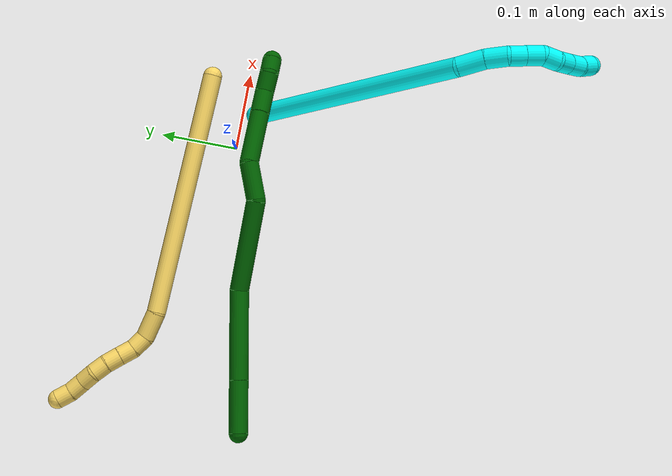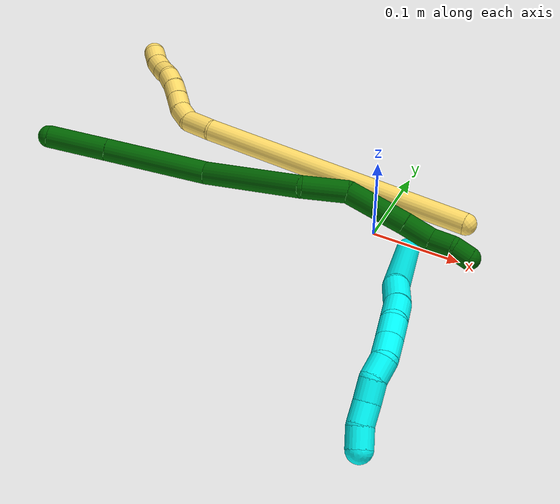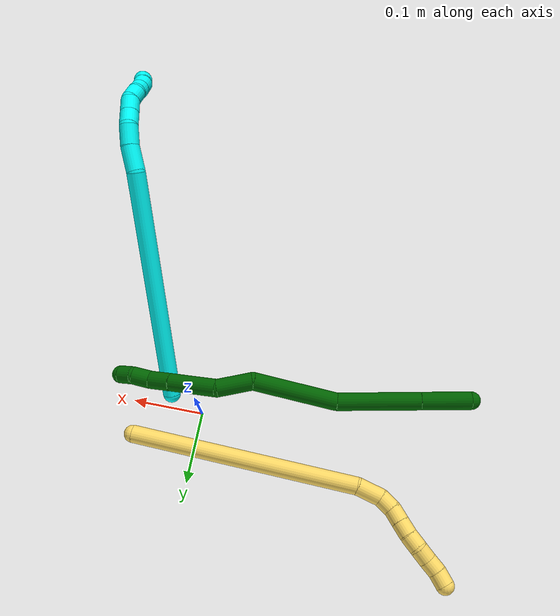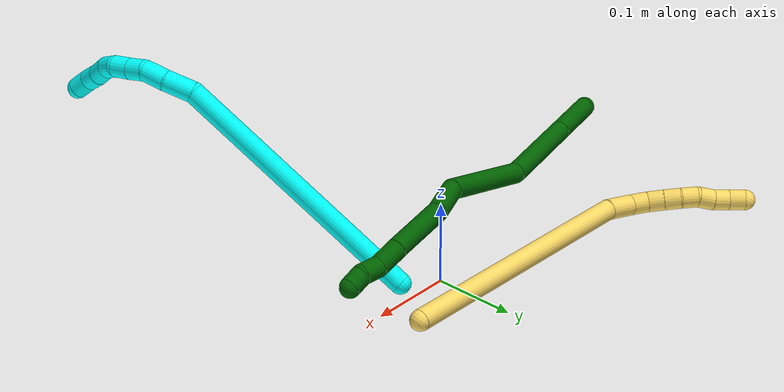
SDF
<sdf version="1.7">
 <world name="default">
  <model name="photoneo_s_sensor">
   <static>1</static>
   <pose>0 0 2 1.57079 1.57079 3.14159</pose>
   <link name="link">
    <inertial><mass>0.1</mass></inertial>
    <sensor name="sensor" type="depth">
     <update_rate>30</update_rate>
     <camera>
      <horizontal_fov>1.22</horizontal_fov>
      <image><width>1920</width><height>1200</height><format>B8G8R8</format></image>
      <clip><near>0.1</near><far>4</far></clip>
      <depth_camera><output>points</output></depth_camera>
     </camera>
     <plugin name="camera_plugin" filename="libgazebo_ros_depth_camera.so">
      <baseline>0.2</baseline>
      <alwaysOn>1</alwaysOn>
      <updateRate>0.0</updateRate>
      <cameraName>camera_ir</cameraName>
      <imageTopicName>/camera/color/image_raw</imageTopicName>
      <cameraInfoTopicName>/camera/color/camera_info</cameraInfoTopicName>
      <depthImageTopicName>/camera/depth/image_raw</depthImageTopicName>
      <depthImageCameraInfoTopicName>/camera/depth/camera_info</depthImageCameraInfoTopicName>
      <pointCloudTopicName>/camera/depth/points</pointCloudTopicName>
      <frameName>fr_optical</frameName>
      <pointCloudCutoff>0.1</pointCloudCutoff>
      <pointCloudCutoffMax>2.0</pointCloudCutoffMax>
      <distortionK1>0</distortionK1>
      <distortionK2>0</distortionK2>
      <distortionK3>0</distortionK3>
      <distortionT1>0</distortionT1>
      <distortionT2>0</distortionT2>
      <CxPrime>0</CxPrime>
      <Cx>0</Cx>
      <Cy>0</Cy>
      <focalLength>0</focalLength>
      <hackBaseline>0</hackBaseline>
     </plugin>
    </sensor>
   </link>
  </model>
  <model name="bin">
   <static>1</static>
   <link name="bottom">
    <collision name="collision-bottom">
     <pose>0 0 -0.01 0 -0 0</pose>
     <geometry><box><size>0.8 0.6 0.02</size></box></geometry>
     <surface>
      <friction><ode><mu>100</mu><mu2>100</mu2></ode></friction>
      <contact><collide_bitmask>65535</collide_bitmask></contact>
     </surface>
    </collision>
   </link>
   <link name="west_wall">
    <collision name="collision-west_wall">
     <pose>-0.41 0 0.1 0 -0 0</pose>
     <geometry><box><size>0.02 0.6 0.2</size></box></geometry>
     <surface>
      <friction><ode><mu>100</mu><mu2>100</mu2></ode></friction>
      <contact><collide_bitmask>65535</collide_bitmask></contact>
     </surface>
    </collision>
   </link>
   <link name="east_wall">
    <collision name="collision-east_wall">
     <pose>0.41 0 0.1 0 -0 0</pose>
     <geometry><box><size>0.02 0.6 0.2</size></box></geometry>
     <surface>
      <friction><ode><mu>100</mu><mu2>100</mu2></ode></friction>
      <contact><collide_bitmask>65535</collide_bitmask></contact>
     </surface>
    </collision>
   </link>
   <link name="south_wall">
    <collision name="collision-south_wall">
     <pose>0 -0.31 0.1 0 -0 0</pose>
     <geometry><box><size>0.8 0.02 0.2</size></box></geometry>
     <surface>
      <friction><ode><mu>100</mu><mu2>100</mu2></ode></friction>
      <contact><collide_bitmask>65535</collide_bitmask></contact>
     </surface>
    </collision>
   </link>
   <link name="north_wall">
    <collision name="collision-north_wall">
     <pose>0 0.31 0.1 0 -0 0</pose>
     <geometry><box><size>0.8 0.02 0.2</size></box></geometry>
     <surface>
      <friction><ode><mu>100</mu><mu2>100</mu2></ode></friction>
      <contact><collide_bitmask>65535</collide_bitmask></contact>
     </surface>
    </collision>
   </link>
  </model>
  <model name="3">
   <static>0</static>
   <link name="3">
    <collision name="collision-cylinder-e_1_1_4">
     <pose>-0.009658 -0.007626 0.15699 0.048537 -0.061371 -0.00149</pose>
     <geometry><cylinder><radius>0.0125</radius><length>0.314942</length></cylinder></geometry>
     <surface>
      <friction><ode><mu>1.16</mu><mu2>1.16</mu2><slip1>0</slip1><slip2>0</slip2></ode></friction>
      <contact><ode><kp>1e+06</kp><kd>1</kd><max_vel>0</max_vel><min_depth>0.001</min_depth></ode></contact>
     </surface>
    </collision>
    <visual name="visual-cylinder-e_1_1_4">
     <pose>-0.009658 -0.007626 0.15699 0.048537 -0.061371 -0.00149</pose>
     <geometry><cylinder><radius>0.0125</radius><length>0.314942</length></cylinder></geometry>
     <material><ambient>0.003922 1 0.996078 1</ambient></material>
    </visual>
    <collision name="collision-cylinder-e_2_4_5">
     <pose>-0.015285 -0.012621 0.330476 -0.158149 0.236777 -0.01885</pose>
     <geometry><cylinder><radius>0.0125</radius><length>0.03437</length></cylinder></geometry>
     <surface>
      <friction><ode><mu>1.16</mu><mu2>1.16</mu2><slip1>0</slip1><slip2>0</slip2></ode></friction>
      <contact><ode><kp>1e+06</kp><kd>1</kd><max_vel>0</max_vel><min_depth>0.001</min_depth></ode></contact>
     </surface>
    </collision>
    <visual name="visual-cylinder-e_2_4_5">
     <pose>-0.015285 -0.012621 0.330476 -0.158149 0.236777 -0.01885</pose>
     <geometry><cylinder><radius>0.0125</radius><length>0.03437</length></cylinder></geometry>
     <material><ambient>0.003922 1 0.996078 1</ambient></material>
    </visual>
    <collision name="collision-cylinder-e_3_5_6">
     <pose>-0.006812 -0.009717 0.360269 -0.020497 0.322386 -0.003333</pose>
     <geometry><cylinder><radius>0.0125</radius><length>0.028042</length></cylinder></geometry>
     <surface>
      <friction><ode><mu>1.16</mu><mu2>1.16</mu2><slip1>0</slip1><slip2>0</slip2></ode></friction>
      <contact><ode><kp>1e+06</kp><kd>1</kd><max_vel>0</max_vel><min_depth>0.001</min_depth></ode></contact>
     </surface>
    </collision>
    <visual name="visual-cylinder-e_3_5_6">
     <pose>-0.006812 -0.009717 0.360269 -0.020497 0.322386 -0.003333</pose>
     <geometry><cylinder><radius>0.0125</radius><length>0.028042</length></cylinder></geometry>
     <material><ambient>0.003922 1 0.996078 1</ambient></material>
    </visual>
    <collision name="collision-cylinder-e_4_6_7">
     <pose>0.004327 -0.008712 0.381431 -0.092811 0.703101 -0.034063</pose>
     <geometry><cylinder><radius>0.0125</radius><length>0.020712</length></cylinder></geometry>
     <surface>
      <friction><ode><mu>1.16</mu><mu2>1.16</mu2><slip1>0</slip1><slip2>0</slip2></ode></friction>
      <contact><ode><kp>1e+06</kp><kd>1</kd><max_vel>0</max_vel><min_depth>0.001</min_depth></ode></contact>
     </surface>
    </collision>
    <visual name="visual-cylinder-e_4_6_7">
     <pose>0.004327 -0.008712 0.381431 -0.092811 0.703101 -0.034063</pose>
     <geometry><cylinder><radius>0.0125</radius><length>0.020712</length></cylinder></geometry>
     <material><ambient>0.003922 1 0.996078 1</ambient></material>
    </visual>
    <collision name="collision-cylinder-e_5_7_8">
     <pose>0.017532 -0.007441 0.397811 -0.06326 0.651766 -0.021384</pose>
     <geometry><cylinder><radius>0.0125</radius><length>0.021461</length></cylinder></geometry>
     <surface>
      <friction><ode><mu>1.16</mu><mu2>1.16</mu2><slip1>0</slip1><slip2>0</slip2></ode></friction>
      <contact><ode><kp>1e+06</kp><kd>1</kd><max_vel>0</max_vel><min_depth>0.001</min_depth></ode></contact>
     </surface>
    </collision>
    <visual name="visual-cylinder-e_5_7_8">
     <pose>0.017532 -0.007441 0.397811 -0.06326 0.651766 -0.021384</pose>
     <geometry><cylinder><radius>0.0125</radius><length>0.021461</length></cylinder></geometry>
     <material><ambient>0.003922 1 0.996078 1</ambient></material>
    </visual>
    <collision name="collision-cylinder-e_6_8_9">
     <pose>0.03263 -0.008423 0.411302 0.296578 1.02609 0.167922</pose>
     <geometry><cylinder><radius>0.0125</radius><length>0.020085</length></cylinder></geometry>
     <surface>
      <friction><ode><mu>1.16</mu><mu2>1.16</mu2><slip1>0</slip1><slip2>0</slip2></ode></friction>
      <contact><ode><kp>1e+06</kp><kd>1</kd><max_vel>0</max_vel><min_depth>0.001</min_depth></ode></contact>
     </surface>
    </collision>
    <visual name="visual-cylinder-e_6_8_9">
     <pose>0.03263 -0.008423 0.411302 0.296578 1.02609 0.167922</pose>
     <geometry><cylinder><radius>0.0125</radius><length>0.020085</length></cylinder></geometry>
     <material><ambient>0.003922 1 0.996078 1</ambient></material>
    </visual>
    <collision name="collision-cylinder-e_7_9_10">
     <pose>0.050923 -0.008819 0.418895 -0.405757 1.28534 -0.305626</pose>
     <geometry><cylinder><radius>0.0125</radius><length>0.020226</length></cylinder></geometry>
     <surface>
      <friction><ode><mu>1.16</mu><mu2>1.16</mu2><slip1>0</slip1><slip2>0</slip2></ode></friction>
      <contact><ode><kp>1e+06</kp><kd>1</kd><max_vel>0</max_vel><min_depth>0.001</min_depth></ode></contact>
     </surface>
    </collision>
    <visual name="visual-cylinder-e_7_9_10">
     <pose>0.050923 -0.008819 0.418895 -0.405757 1.28534 -0.305626</pose>
     <geometry><cylinder><radius>0.0125</radius><length>0.020226</length></cylinder></geometry>
     <material><ambient>0.003922 1 0.996078 1</ambient></material>
    </visual>
    <collision name="collision-cylinder-e_8_10_11">
     <pose>0.069905 -0.006944 0.425167 -0.202697 1.18834 -0.1372</pose>
     <geometry><cylinder><radius>0.0125</radius><length>0.020001</length></cylinder></geometry>
     <surface>
      <friction><ode><mu>1.16</mu><mu2>1.16</mu2><slip1>0</slip1><slip2>0</slip2></ode></friction>
      <contact><ode><kp>1e+06</kp><kd>1</kd><max_vel>0</max_vel><min_depth>0.001</min_depth></ode></contact>
     </surface>
    </collision>
    <visual name="visual-cylinder-e_8_10_11">
     <pose>0.069905 -0.006944 0.425167 -0.202697 1.18834 -0.1372</pose>
     <geometry><cylinder><radius>0.0125</radius><length>0.020001</length></cylinder></geometry>
     <material><ambient>0.003922 1 0.996078 1</ambient></material>
    </visual>
    <collision name="collision-cylinder-e_9_11_2">
     <pose>0.088215 -0.002954 0.431912 -0.808988 1.11076 -0.519306</pose>
     <geometry><cylinder><radius>0.0125</radius><length>0.02016</length></cylinder></geometry>
     <surface>
      <friction><ode><mu>1.16</mu><mu2>1.16</mu2><slip1>0</slip1><slip2>0</slip2></ode></friction>
      <contact><ode><kp>1e+06</kp><kd>1</kd><max_vel>0</max_vel><min_depth>0.001</min_depth></ode></contact>
     </surface>
    </collision>
    <visual name="visual-cylinder-e_9_11_2">
     <pose>0.088215 -0.002954 0.431912 -0.808988 1.11076 -0.519306</pose>
     <geometry><cylinder><radius>0.0125</radius><length>0.02016</length></cylinder></geometry>
     <material><ambient>0.003922 1 0.996078 1</ambient></material>
    </visual>
    <collision name="collision-sphere-2">
     <pose>0.097247 0.000284 0.435001 0 -0 0</pose>
     <geometry><sphere><radius>0.0125</radius></sphere></geometry>
     <surface>
      <friction><ode><mu>1.16</mu><mu2>1.16</mu2><slip1>0</slip1><slip2>0</slip2></ode></friction>
      <contact><ode><kp>1e+06</kp><kd>1</kd><max_vel>0</max_vel><min_depth>0.001</min_depth></ode></contact>
     </surface>
    </collision>
    <visual name="visual-sphere-2">
     <pose>0.097247 0.000284 0.435001 0 -0 0</pose>
     <geometry><sphere><radius>0.0125</radius></sphere></geometry>
     <material><ambient>0.003922 1 0.996078 1</ambient></material>
    </visual>
    <collision name="collision-sphere-11">
     <pose>0.079183 -0.006192 0.428823 0 -0 0</pose>
     <geometry><sphere><radius>0.0125</radius></sphere></geometry>
     <surface>
      <friction><ode><mu>1.16</mu><mu2>1.16</mu2><slip1>0</slip1><slip2>0</slip2></ode></friction>
      <contact><ode><kp>1e+06</kp><kd>1</kd><max_vel>0</max_vel><min_depth>0.001</min_depth></ode></contact>
     </surface>
    </collision>
    <visual name="visual-sphere-11">
     <pose>0.079183 -0.006192 0.428823 0 -0 0</pose>
     <geometry><sphere><radius>0.0125</radius></sphere></geometry>
     <material><ambient>0.003922 1 0.996078 1</ambient></material>
    </visual>
    <collision name="collision-sphere-10">
     <pose>0.060627 -0.007695 0.421511 0 -0 0</pose>
     <geometry><sphere><radius>0.0125</radius></sphere></geometry>
     <surface>
      <friction><ode><mu>1.16</mu><mu2>1.16</mu2><slip1>0</slip1><slip2>0</slip2></ode></friction>
      <contact><ode><kp>1e+06</kp><kd>1</kd><max_vel>0</max_vel><min_depth>0.001</min_depth></ode></contact>
     </surface>
    </collision>
    <visual name="visual-sphere-10">
     <pose>0.060627 -0.007695 0.421511 0 -0 0</pose>
     <geometry><sphere><radius>0.0125</radius></sphere></geometry>
     <material><ambient>0.003922 1 0.996078 1</ambient></material>
    </visual>
    <collision name="collision-sphere-9">
     <pose>0.041219 -0.009943 0.416278 0 -0 0</pose>
     <geometry><sphere><radius>0.0125</radius></sphere></geometry>
     <surface>
      <friction><ode><mu>1.16</mu><mu2>1.16</mu2><slip1>0</slip1><slip2>0</slip2></ode></friction>
      <contact><ode><kp>1e+06</kp><kd>1</kd><max_vel>0</max_vel><min_depth>0.001</min_depth></ode></contact>
     </surface>
    </collision>
    <visual name="visual-sphere-9">
     <pose>0.041219 -0.009943 0.416278 0 -0 0</pose>
     <geometry><sphere><radius>0.0125</radius></sphere></geometry>
     <material><ambient>0.003922 1 0.996078 1</ambient></material>
    </visual>
    <collision name="collision-sphere-4">
     <pose>-0.019316 -0.015252 0.313979 0 -0 0</pose>
     <geometry><sphere><radius>0.0125</radius></sphere></geometry>
     <surface>
      <friction><ode><mu>1.16</mu><mu2>1.16</mu2><slip1>0</slip1><slip2>0</slip2></ode></friction>
      <contact><ode><kp>1e+06</kp><kd>1</kd><max_vel>0</max_vel><min_depth>0.001</min_depth></ode></contact>
     </surface>
    </collision>
    <visual name="visual-sphere-4">
     <pose>-0.019316 -0.015252 0.313979 0 -0 0</pose>
     <geometry><sphere><radius>0.0125</radius></sphere></geometry>
     <material><ambient>0.003922 1 0.996078 1</ambient></material>
    </visual>
    <collision name="collision-sphere-1">
     <geometry><sphere><radius>0.0125</radius></sphere></geometry>
     <surface>
      <friction><ode><mu>1.16</mu><mu2>1.16</mu2><slip1>0</slip1><slip2>0</slip2></ode></friction>
      <contact><ode><kp>1e+06</kp><kd>1</kd><max_vel>0</max_vel><min_depth>0.001</min_depth></ode></contact>
     </surface>
    </collision>
    <visual name="visual-sphere-1">
     <geometry><sphere><radius>0.0125</radius></sphere></geometry>
     <material><ambient>0.003922 1 0.996078 1</ambient></material>
    </visual>
    <collision name="collision-sphere-8">
     <pose>0.024041 -0.006902 0.406325 0 -0 0</pose>
     <geometry><sphere><radius>0.0125</radius></sphere></geometry>
     <surface>
      <friction><ode><mu>1.16</mu><mu2>1.16</mu2><slip1>0</slip1><slip2>0</slip2></ode></friction>
      <contact><ode><kp>1e+06</kp><kd>1</kd><max_vel>0</max_vel><min_depth>0.001</min_depth></ode></contact>
     </surface>
    </collision>
    <visual name="visual-sphere-8">
     <pose>0.024041 -0.006902 0.406325 0 -0 0</pose>
     <geometry><sphere><radius>0.0125</radius></sphere></geometry>
     <material><ambient>0.003922 1 0.996078 1</ambient></material>
    </visual>
    <collision name="collision-sphere-5">
     <pose>-0.011254 -0.00999 0.346973 0 -0 0</pose>
     <geometry><sphere><radius>0.0125</radius></sphere></geometry>
     <surface>
      <friction><ode><mu>1.16</mu><mu2>1.16</mu2><slip1>0</slip1><slip2>0</slip2></ode></friction>
      <contact><ode><kp>1e+06</kp><kd>1</kd><max_vel>0</max_vel><min_depth>0.001</min_depth></ode></contact>
     </surface>
    </collision>
    <visual name="visual-sphere-5">
     <pose>-0.011254 -0.00999 0.346973 0 -0 0</pose>
     <geometry><sphere><radius>0.0125</radius></sphere></geometry>
     <material><ambient>0.003922 1 0.996078 1</ambient></material>
    </visual>
    <collision name="collision-sphere-6">
     <pose>-0.002369 -0.009445 0.373565 0 -0 0</pose>
     <geometry><sphere><radius>0.0125</radius></sphere></geometry>
     <surface>
      <friction><ode><mu>1.16</mu><mu2>1.16</mu2><slip1>0</slip1><slip2>0</slip2></ode></friction>
      <contact><ode><kp>1e+06</kp><kd>1</kd><max_vel>0</max_vel><min_depth>0.001</min_depth></ode></contact>
     </surface>
    </collision>
    <visual name="visual-sphere-6">
     <pose>-0.002369 -0.009445 0.373565 0 -0 0</pose>
     <geometry><sphere><radius>0.0125</radius></sphere></geometry>
     <material><ambient>0.003922 1 0.996078 1</ambient></material>
    </visual>
    <collision name="collision-sphere-7">
     <pose>0.011023 -0.00798 0.389297 0 -0 0</pose>
     <geometry><sphere><radius>0.0125</radius></sphere></geometry>
     <surface>
      <friction><ode><mu>1.16</mu><mu2>1.16</mu2><slip1>0</slip1><slip2>0</slip2></ode></friction>
      <contact><ode><kp>1e+06</kp><kd>1</kd><max_vel>0</max_vel><min_depth>0.001</min_depth></ode></contact>
     </surface>
    </collision>
    <visual name="visual-sphere-7">
     <pose>0.011023 -0.00798 0.389297 0 -0 0</pose>
     <geometry><sphere><radius>0.0125</radius></sphere></geometry>
     <material><ambient>0.003922 1 0.996078 1</ambient></material>
    </visual>
    <inertial>
     <pose>0.003139 -0.007988 0.242573 0 -0 0</pose>
     <mass>0.5</mass>
     <inertia>
      <ixx>0.002626</ixx>
      <ixy>0</ixy>
      <ixz>0</ixz>
      <iyy>0.002625</iyy>
      <iyz>0</iyz>
      <izz>0.00031</izz>
     </inertia>
    </inertial>
   </link>
   <pose>0.047644 -0.017849 0.011495 -0.433916 0.937247 -1.74067</pose>
  </model>
  <model name="5">
   <static>0</static>
   <link name="5">
    <collision name="collision-cylinder-e_1_1_4">
     <pose>-0.109107 -0.004728 0.118324 0.039933 -0.744495 -0.015594</pose>
     <geometry><cylinder><radius>0.0125</radius><length>0.322039</length></cylinder></geometry>
     <surface>
      <friction><ode><mu>1.16</mu><mu2>1.16</mu2><slip1>0</slip1><slip2>0</slip2></ode></friction>
      <contact><ode><kp>1e+06</kp><kd>1</kd><max_vel>0</max_vel><min_depth>0.001</min_depth></ode></contact>
     </surface>
    </collision>
    <visual name="visual-cylinder-e_1_1_4">
     <pose>-0.109107 -0.004728 0.118324 0.039933 -0.744495 -0.015594</pose>
     <geometry><cylinder><radius>0.0125</radius><length>0.322039</length></cylinder></geometry>
     <material><ambient>1 0.858824 0.4 1</ambient></material>
    </visual>
    <collision name="collision-cylinder-e_2_4_5">
     <pose>-0.231661 -0.006028 0.248008 -0.292996 -0.847817 0.132978</pose>
     <geometry><cylinder><radius>0.0125</radius><length>0.035867</length></cylinder></geometry>
     <surface>
      <friction><ode><mu>1.16</mu><mu2>1.16</mu2><slip1>0</slip1><slip2>0</slip2></ode></friction>
      <contact><ode><kp>1e+06</kp><kd>1</kd><max_vel>0</max_vel><min_depth>0.001</min_depth></ode></contact>
     </surface>
    </collision>
    <visual name="visual-cylinder-e_2_4_5">
     <pose>-0.231661 -0.006028 0.248008 -0.292996 -0.847817 0.132978</pose>
     <geometry><cylinder><radius>0.0125</radius><length>0.035867</length></cylinder></geometry>
     <material><ambient>1 0.858824 0.4 1</ambient></material>
    </visual>
    <collision name="collision-cylinder-e_3_5_6">
     <pose>-0.250335 0.002814 0.26714 -0.608544 -0.504203 0.161422</pose>
     <geometry><cylinder><radius>0.0125</radius><length>0.02164</length></cylinder></geometry>
     <surface>
      <friction><ode><mu>1.16</mu><mu2>1.16</mu2><slip1>0</slip1><slip2>0</slip2></ode></friction>
      <contact><ode><kp>1e+06</kp><kd>1</kd><max_vel>0</max_vel><min_depth>0.001</min_depth></ode></contact>
     </surface>
    </collision>
    <visual name="visual-cylinder-e_3_5_6">
     <pose>-0.250335 0.002814 0.26714 -0.608544 -0.504203 0.161422</pose>
     <geometry><cylinder><radius>0.0125</radius><length>0.02164</length></cylinder></geometry>
     <material><ambient>1 0.858824 0.4 1</ambient></material>
    </visual>
    <collision name="collision-cylinder-e_4_6_7">
     <pose>-0.258399 0.015196 0.281696 -0.798717 -0.283879 0.120473</pose>
     <geometry><cylinder><radius>0.0125</radius><length>0.020257</length></cylinder></geometry>
     <surface>
      <friction><ode><mu>1.16</mu><mu2>1.16</mu2><slip1>0</slip1><slip2>0</slip2></ode></friction>
      <contact><ode><kp>1e+06</kp><kd>1</kd><max_vel>0</max_vel><min_depth>0.001</min_depth></ode></contact>
     </surface>
    </collision>
    <visual name="visual-cylinder-e_4_6_7">
     <pose>-0.258399 0.015196 0.281696 -0.798717 -0.283879 0.120473</pose>
     <geometry><cylinder><radius>0.0125</radius><length>0.020257</length></cylinder></geometry>
     <material><ambient>1 0.858824 0.4 1</ambient></material>
    </visual>
    <collision name="collision-cylinder-e_5_7_8">
     <pose>-0.264312 0.028985 0.295154 -0.796364 -0.311766 0.132025</pose>
     <geometry><cylinder><radius>0.0125</radius><length>0.020056</length></cylinder></geometry>
     <surface>
      <friction><ode><mu>1.16</mu><mu2>1.16</mu2><slip1>0</slip1><slip2>0</slip2></ode></friction>
      <contact><ode><kp>1e+06</kp><kd>1</kd><max_vel>0</max_vel><min_depth>0.001</min_depth></ode></contact>
     </surface>
    </collision>
    <visual name="visual-cylinder-e_5_7_8">
     <pose>-0.264312 0.028985 0.295154 -0.796364 -0.311766 0.132025</pose>
     <geometry><cylinder><radius>0.0125</radius><length>0.020056</length></cylinder></geometry>
     <material><ambient>1 0.858824 0.4 1</ambient></material>
    </visual>
    <collision name="collision-cylinder-e_6_8_9">
     <pose>-0.271795 0.041976 0.308403 -0.753532 -0.454712 0.182571</pose>
     <geometry><cylinder><radius>0.0125</radius><length>0.020068</length></cylinder></geometry>
     <surface>
      <friction><ode><mu>1.16</mu><mu2>1.16</mu2><slip1>0</slip1><slip2>0</slip2></ode></friction>
      <contact><ode><kp>1e+06</kp><kd>1</kd><max_vel>0</max_vel><min_depth>0.001</min_depth></ode></contact>
     </surface>
    </collision>
    <visual name="visual-cylinder-e_6_8_9">
     <pose>-0.271795 0.041976 0.308403 -0.753532 -0.454712 0.182571</pose>
     <geometry><cylinder><radius>0.0125</radius><length>0.020068</length></cylinder></geometry>
     <material><ambient>1 0.858824 0.4 1</ambient></material>
    </visual>
    <collision name="collision-cylinder-e_7_9_10">
     <pose>-0.2829 0.054209 0.319299 -0.951624 -0.73245 0.390233</pose>
     <geometry><cylinder><radius>0.0125</radius><length>0.020034</length></cylinder></geometry>
     <surface>
      <friction><ode><mu>1.16</mu><mu2>1.16</mu2><slip1>0</slip1><slip2>0</slip2></ode></friction>
      <contact><ode><kp>1e+06</kp><kd>1</kd><max_vel>0</max_vel><min_depth>0.001</min_depth></ode></contact>
     </surface>
    </collision>
    <visual name="visual-cylinder-e_7_9_10">
     <pose>-0.2829 0.054209 0.319299 -0.951624 -0.73245 0.390233</pose>
     <geometry><cylinder><radius>0.0125</radius><length>0.020034</length></cylinder></geometry>
     <material><ambient>1 0.858824 0.4 1</ambient></material>
    </visual>
    <collision name="collision-cylinder-e_8_10_11">
     <pose>-0.295214 0.066178 0.329433 -0.793303 -0.595724 0.255767</pose>
     <geometry><cylinder><radius>0.0125</radius><length>0.020016</length></cylinder></geometry>
     <surface>
      <friction><ode><mu>1.16</mu><mu2>1.16</mu2><slip1>0</slip1><slip2>0</slip2></ode></friction>
      <contact><ode><kp>1e+06</kp><kd>1</kd><max_vel>0</max_vel><min_depth>0.001</min_depth></ode></contact>
     </surface>
    </collision>
    <visual name="visual-cylinder-e_8_10_11">
     <pose>-0.295214 0.066178 0.329433 -0.793303 -0.595724 0.255767</pose>
     <geometry><cylinder><radius>0.0125</radius><length>0.020016</length></cylinder></geometry>
     <material><ambient>1 0.858824 0.4 1</ambient></material>
    </visual>
    <collision name="collision-cylinder-e_9_11_2">
     <pose>-0.304544 0.079326 0.341072 -0.893291 -0.380084 0.183736</pose>
     <geometry><cylinder><radius>0.0125</radius><length>0.020023</length></cylinder></geometry>
     <surface>
      <friction><ode><mu>1.16</mu><mu2>1.16</mu2><slip1>0</slip1><slip2>0</slip2></ode></friction>
      <contact><ode><kp>1e+06</kp><kd>1</kd><max_vel>0</max_vel><min_depth>0.001</min_depth></ode></contact>
     </surface>
    </collision>
    <visual name="visual-cylinder-e_9_11_2">
     <pose>-0.304544 0.079326 0.341072 -0.893291 -0.380084 0.183736</pose>
     <geometry><cylinder><radius>0.0125</radius><length>0.020023</length></cylinder></geometry>
     <material><ambient>1 0.858824 0.4 1</ambient></material>
    </visual>
    <collision name="collision-sphere-2">
     <pose>-0.308258 0.08657 0.3469 0 -0 0</pose>
     <geometry><sphere><radius>0.0125</radius></sphere></geometry>
     <surface>
      <friction><ode><mu>1.16</mu><mu2>1.16</mu2><slip1>0</slip1><slip2>0</slip2></ode></friction>
      <contact><ode><kp>1e+06</kp><kd>1</kd><max_vel>0</max_vel><min_depth>0.001</min_depth></ode></contact>
     </surface>
    </collision>
    <visual name="visual-sphere-2">
     <pose>-0.308258 0.08657 0.3469 0 -0 0</pose>
     <geometry><sphere><radius>0.0125</radius></sphere></geometry>
     <material><ambient>1 0.858824 0.4 1</ambient></material>
    </visual>
    <collision name="collision-sphere-11">
     <pose>-0.30083 0.072082 0.335244 0 -0 0</pose>
     <geometry><sphere><radius>0.0125</radius></sphere></geometry>
     <surface>
      <friction><ode><mu>1.16</mu><mu2>1.16</mu2><slip1>0</slip1><slip2>0</slip2></ode></friction>
      <contact><ode><kp>1e+06</kp><kd>1</kd><max_vel>0</max_vel><min_depth>0.001</min_depth></ode></contact>
     </surface>
    </collision>
    <visual name="visual-sphere-11">
     <pose>-0.30083 0.072082 0.335244 0 -0 0</pose>
     <geometry><sphere><radius>0.0125</radius></sphere></geometry>
     <material><ambient>1 0.858824 0.4 1</ambient></material>
    </visual>
    <collision name="collision-sphere-10">
     <pose>-0.289599 0.060275 0.323622 0 -0 0</pose>
     <geometry><sphere><radius>0.0125</radius></sphere></geometry>
     <surface>
      <friction><ode><mu>1.16</mu><mu2>1.16</mu2><slip1>0</slip1><slip2>0</slip2></ode></friction>
      <contact><ode><kp>1e+06</kp><kd>1</kd><max_vel>0</max_vel><min_depth>0.001</min_depth></ode></contact>
     </surface>
    </collision>
    <visual name="visual-sphere-10">
     <pose>-0.289599 0.060275 0.323622 0 -0 0</pose>
     <geometry><sphere><radius>0.0125</radius></sphere></geometry>
     <material><ambient>1 0.858824 0.4 1</ambient></material>
    </visual>
    <collision name="collision-sphere-9">
     <pose>-0.276202 0.048144 0.314977 0 -0 0</pose>
     <geometry><sphere><radius>0.0125</radius></sphere></geometry>
     <surface>
      <friction><ode><mu>1.16</mu><mu2>1.16</mu2><slip1>0</slip1><slip2>0</slip2></ode></friction>
      <contact><ode><kp>1e+06</kp><kd>1</kd><max_vel>0</max_vel><min_depth>0.001</min_depth></ode></contact>
     </surface>
    </collision>
    <visual name="visual-sphere-9">
     <pose>-0.276202 0.048144 0.314977 0 -0 0</pose>
     <geometry><sphere><radius>0.0125</radius></sphere></geometry>
     <material><ambient>1 0.858824 0.4 1</ambient></material>
    </visual>
    <collision name="collision-sphere-4">
     <pose>-0.218214 -0.009455 0.236648 0 -0 0</pose>
     <geometry><sphere><radius>0.0125</radius></sphere></geometry>
     <surface>
      <friction><ode><mu>1.16</mu><mu2>1.16</mu2><slip1>0</slip1><slip2>0</slip2></ode></friction>
      <contact><ode><kp>1e+06</kp><kd>1</kd><max_vel>0</max_vel><min_depth>0.001</min_depth></ode></contact>
     </surface>
    </collision>
    <visual name="visual-sphere-4">
     <pose>-0.218214 -0.009455 0.236648 0 -0 0</pose>
     <geometry><sphere><radius>0.0125</radius></sphere></geometry>
     <material><ambient>1 0.858824 0.4 1</ambient></material>
    </visual>
    <collision name="collision-sphere-1">
     <geometry><sphere><radius>0.0125</radius></sphere></geometry>
     <surface>
      <friction><ode><mu>1.16</mu><mu2>1.16</mu2><slip1>0</slip1><slip2>0</slip2></ode></friction>
      <contact><ode><kp>1e+06</kp><kd>1</kd><max_vel>0</max_vel><min_depth>0.001</min_depth></ode></contact>
     </surface>
    </collision>
    <visual name="visual-sphere-1">
     <geometry><sphere><radius>0.0125</radius></sphere></geometry>
     <material><ambient>1 0.858824 0.4 1</ambient></material>
    </visual>
    <collision name="collision-sphere-8">
     <pose>-0.267388 0.035808 0.301829 0 -0 0</pose>
     <geometry><sphere><radius>0.0125</radius></sphere></geometry>
     <surface>
      <friction><ode><mu>1.16</mu><mu2>1.16</mu2><slip1>0</slip1><slip2>0</slip2></ode></friction>
      <contact><ode><kp>1e+06</kp><kd>1</kd><max_vel>0</max_vel><min_depth>0.001</min_depth></ode></contact>
     </surface>
    </collision>
    <visual name="visual-sphere-8">
     <pose>-0.267388 0.035808 0.301829 0 -0 0</pose>
     <geometry><sphere><radius>0.0125</radius></sphere></geometry>
     <material><ambient>1 0.858824 0.4 1</ambient></material>
    </visual>
    <collision name="collision-sphere-5">
     <pose>-0.245108 -0.002601 0.259367 0 -0 0</pose>
     <geometry><sphere><radius>0.0125</radius></sphere></geometry>
     <surface>
      <friction><ode><mu>1.16</mu><mu2>1.16</mu2><slip1>0</slip1><slip2>0</slip2></ode></friction>
      <contact><ode><kp>1e+06</kp><kd>1</kd><max_vel>0</max_vel><min_depth>0.001</min_depth></ode></contact>
     </surface>
    </collision>
    <visual name="visual-sphere-5">
     <pose>-0.245108 -0.002601 0.259367 0 -0 0</pose>
     <geometry><sphere><radius>0.0125</radius></sphere></geometry>
     <material><ambient>1 0.858824 0.4 1</ambient></material>
    </visual>
    <collision name="collision-sphere-6">
     <pose>-0.255562 0.00823 0.274913 0 -0 0</pose>
     <geometry><sphere><radius>0.0125</radius></sphere></geometry>
     <surface>
      <friction><ode><mu>1.16</mu><mu2>1.16</mu2><slip1>0</slip1><slip2>0</slip2></ode></friction>
      <contact><ode><kp>1e+06</kp><kd>1</kd><max_vel>0</max_vel><min_depth>0.001</min_depth></ode></contact>
     </surface>
    </collision>
    <visual name="visual-sphere-6">
     <pose>-0.255562 0.00823 0.274913 0 -0 0</pose>
     <geometry><sphere><radius>0.0125</radius></sphere></geometry>
     <material><ambient>1 0.858824 0.4 1</ambient></material>
    </visual>
    <collision name="collision-sphere-7">
     <pose>-0.261236 0.022163 0.288479 0 -0 0</pose>
     <geometry><sphere><radius>0.0125</radius></sphere></geometry>
     <surface>
      <friction><ode><mu>1.16</mu><mu2>1.16</mu2><slip1>0</slip1><slip2>0</slip2></ode></friction>
      <contact><ode><kp>1e+06</kp><kd>1</kd><max_vel>0</max_vel><min_depth>0.001</min_depth></ode></contact>
     </surface>
    </collision>
    <visual name="visual-sphere-7">
     <pose>-0.261236 0.022163 0.288479 0 -0 0</pose>
     <geometry><sphere><radius>0.0125</radius></sphere></geometry>
     <material><ambient>1 0.858824 0.4 1</ambient></material>
    </visual>
    <inertial>
     <pose>-0.165054 0.008106 0.180833 0 -0 0</pose>
     <mass>0.5</mass>
     <inertia>
      <ixx>0.002014</ixx>
      <ixy>0</ixy>
      <ixz>0</ixz>
      <iyy>0.002784</iyy>
      <iyz>0</iyz>
      <izz>0.002005</izz>
     </inertia>
    </inertial>
   </link>
   <pose>0.087975 0.048729 0.011492 -0.211518 -0.802314 0.088876</pose>
  </model>
  <model name="6">
   <static>0</static>
   <link name="6">
    <collision name="collision-cylinder-e_1_1_4">
     <pose>0.002437 -0.001345 -0.03378 3.1018 0.071968 2.13168</pose>
     <geometry><cylinder><radius>0.0125</radius><length>0.067789</length></cylinder></geometry>
     <surface>
      <friction><ode><mu>1.16</mu><mu2>1.16</mu2><slip1>0</slip1><slip2>0</slip2></ode></friction>
      <contact><ode><kp>1e+06</kp><kd>1</kd><max_vel>0</max_vel><min_depth>0.001</min_depth></ode></contact>
     </surface>
    </collision>
    <visual name="visual-cylinder-e_1_1_4">
     <pose>0.002437 -0.001345 -0.03378 3.1018 0.071968 2.13168</pose>
     <geometry><cylinder><radius>0.0125</radius><length>0.067789</length></cylinder></geometry>
     <material><ambient>0 0.392157 0.003922 1</ambient></material>
    </visual>
    <collision name="collision-cylinder-e_2_4_5">
     <pose>0.009123 -0.005111 -0.12532 3.09971 0.073357 2.10424</pose>
     <geometry><cylinder><radius>0.0125</radius><length>0.115933</length></cylinder></geometry>
     <surface>
      <friction><ode><mu>1.16</mu><mu2>1.16</mu2><slip1>0</slip1><slip2>0</slip2></ode></friction>
      <contact><ode><kp>1e+06</kp><kd>1</kd><max_vel>0</max_vel><min_depth>0.001</min_depth></ode></contact>
     </surface>
    </collision>
    <visual name="visual-cylinder-e_2_4_5">
     <pose>0.009123 -0.005111 -0.12532 3.09971 0.073357 2.10424</pose>
     <geometry><cylinder><radius>0.0125</radius><length>0.115933</length></cylinder></geometry>
     <material><ambient>0 0.392157 0.003922 1</ambient></material>
    </visual>
    <collision name="collision-cylinder-e_3_5_6">
     <pose>0.027362 0.007034 -0.239124 -2.88733 0.237069 -1.50011</pose>
     <geometry><cylinder><radius>0.0125</radius><length>0.119143</length></cylinder></geometry>
     <surface>
      <friction><ode><mu>1.16</mu><mu2>1.16</mu2><slip1>0</slip1><slip2>0</slip2></ode></friction>
      <contact><ode><kp>1e+06</kp><kd>1</kd><max_vel>0</max_vel><min_depth>0.001</min_depth></ode></contact>
     </surface>
    </collision>
    <visual name="visual-cylinder-e_3_5_6">
     <pose>0.027362 0.007034 -0.239124 -2.88733 0.237069 -1.50011</pose>
     <geometry><cylinder><radius>0.0125</radius><length>0.119143</length></cylinder></geometry>
     <material><ambient>0 0.392157 0.003922 1</ambient></material>
    </visual>
    <collision name="collision-cylinder-e_4_6_7">
     <pose>0.038535 0.020093 -0.319829 3.08059 -0.113556 -2.15631</pose>
     <geometry><cylinder><radius>0.0125</radius><length>0.049736</length></cylinder></geometry>
     <surface>
      <friction><ode><mu>1.16</mu><mu2>1.16</mu2><slip1>0</slip1><slip2>0</slip2></ode></friction>
      <contact><ode><kp>1e+06</kp><kd>1</kd><max_vel>0</max_vel><min_depth>0.001</min_depth></ode></contact>
     </surface>
    </collision>
    <visual name="visual-cylinder-e_4_6_7">
     <pose>0.038535 0.020093 -0.319829 3.08059 -0.113556 -2.15631</pose>
     <geometry><cylinder><radius>0.0125</radius><length>0.049736</length></cylinder></geometry>
     <material><ambient>0 0.392157 0.003922 1</ambient></material>
    </visual>
    <collision name="collision-cylinder-e_5_7_8">
     <pose>0.045003 0.010533 -0.376977 2.89857 0.270627 1.67937</pose>
     <geometry><cylinder><radius>0.0125</radius><length>0.069469</length></cylinder></geometry>
     <surface>
      <friction><ode><mu>1.16</mu><mu2>1.16</mu2><slip1>0</slip1><slip2>0</slip2></ode></friction>
      <contact><ode><kp>1e+06</kp><kd>1</kd><max_vel>0</max_vel><min_depth>0.001</min_depth></ode></contact>
     </surface>
    </collision>
    <visual name="visual-cylinder-e_5_7_8">
     <pose>0.045003 0.010533 -0.376977 2.89857 0.270627 1.67937</pose>
     <geometry><cylinder><radius>0.0125</radius><length>0.069469</length></cylinder></geometry>
     <material><ambient>0 0.392157 0.003922 1</ambient></material>
    </visual>
    <collision name="collision-cylinder-e_6_8_9">
     <pose>0.058646 -0.002074 -0.424294 2.84371 0.273815 1.48551</pose>
     <geometry><cylinder><radius>0.0125</radius><length>0.032226</length></cylinder></geometry>
     <surface>
      <friction><ode><mu>1.16</mu><mu2>1.16</mu2><slip1>0</slip1><slip2>0</slip2></ode></friction>
      <contact><ode><kp>1e+06</kp><kd>1</kd><max_vel>0</max_vel><min_depth>0.001</min_depth></ode></contact>
     </surface>
    </collision>
    <visual name="visual-cylinder-e_6_8_9">
     <pose>0.058646 -0.002074 -0.424294 2.84371 0.273815 1.48551</pose>
     <geometry><cylinder><radius>0.0125</radius><length>0.032226</length></cylinder></geometry>
     <material><ambient>0 0.392157 0.003922 1</ambient></material>
    </visual>
    <collision name="collision-cylinder-e_7_9_10">
     <pose>0.066906 -0.005988 -0.451343 -3.0893 0.308793 -2.80866</pose>
     <geometry><cylinder><radius>0.0125</radius><length>0.025687</length></cylinder></geometry>
     <surface>
      <friction><ode><mu>1.16</mu><mu2>1.16</mu2><slip1>0</slip1><slip2>0</slip2></ode></friction>
      <contact><ode><kp>1e+06</kp><kd>1</kd><max_vel>0</max_vel><min_depth>0.001</min_depth></ode></contact>
     </surface>
    </collision>
    <visual name="visual-cylinder-e_7_9_10">
     <pose>0.066906 -0.005988 -0.451343 -3.0893 0.308793 -2.80866</pose>
     <geometry><cylinder><radius>0.0125</radius><length>0.025687</length></cylinder></geometry>
     <material><ambient>0 0.392157 0.003922 1</ambient></material>
    </visual>
    <collision name="collision-cylinder-e_8_10_2">
     <pose>0.07339 -0.008811 -0.472591 2.77534 0.260859 1.23251</pose>
     <geometry><cylinder><radius>0.0125</radius><length>0.020017</length></cylinder></geometry>
     <surface>
      <friction><ode><mu>1.16</mu><mu2>1.16</mu2><slip1>0</slip1><slip2>0</slip2></ode></friction>
      <contact><ode><kp>1e+06</kp><kd>1</kd><max_vel>0</max_vel><min_depth>0.001</min_depth></ode></contact>
     </surface>
    </collision>
    <visual name="visual-cylinder-e_8_10_2">
     <pose>0.07339 -0.008811 -0.472591 2.77534 0.260859 1.23251</pose>
     <geometry><cylinder><radius>0.0125</radius><length>0.020017</length></cylinder></geometry>
     <material><ambient>0 0.392157 0.003922 1</ambient></material>
    </visual>
    <collision name="collision-sphere-2">
     <pose>0.075972 -0.012274 -0.481619 0 -0 0</pose>
     <geometry><sphere><radius>0.0125</radius></sphere></geometry>
     <surface>
      <friction><ode><mu>1.16</mu><mu2>1.16</mu2><slip1>0</slip1><slip2>0</slip2></ode></friction>
      <contact><ode><kp>1e+06</kp><kd>1</kd><max_vel>0</max_vel><min_depth>0.001</min_depth></ode></contact>
     </surface>
    </collision>
    <visual name="visual-sphere-2">
     <pose>0.075972 -0.012274 -0.481619 0 -0 0</pose>
     <geometry><sphere><radius>0.0125</radius></sphere></geometry>
     <material><ambient>0 0.392157 0.003922 1</ambient></material>
    </visual>
    <collision name="collision-sphere-10">
     <pose>0.070809 -0.005348 -0.463562 0 -0 0</pose>
     <geometry><sphere><radius>0.0125</radius></sphere></geometry>
     <surface>
      <friction><ode><mu>1.16</mu><mu2>1.16</mu2><slip1>0</slip1><slip2>0</slip2></ode></friction>
      <contact><ode><kp>1e+06</kp><kd>1</kd><max_vel>0</max_vel><min_depth>0.001</min_depth></ode></contact>
     </surface>
    </collision>
    <visual name="visual-sphere-10">
     <pose>0.070809 -0.005348 -0.463562 0 -0 0</pose>
     <geometry><sphere><radius>0.0125</radius></sphere></geometry>
     <material><ambient>0 0.392157 0.003922 1</ambient></material>
    </visual>
    <collision name="collision-sphere-9">
     <pose>0.063003 -0.006627 -0.439124 0 -0 0</pose>
     <geometry><sphere><radius>0.0125</radius></sphere></geometry>
     <surface>
      <friction><ode><mu>1.16</mu><mu2>1.16</mu2><slip1>0</slip1><slip2>0</slip2></ode></friction>
      <contact><ode><kp>1e+06</kp><kd>1</kd><max_vel>0</max_vel><min_depth>0.001</min_depth></ode></contact>
     </surface>
    </collision>
    <visual name="visual-sphere-9">
     <pose>0.063003 -0.006627 -0.439124 0 -0 0</pose>
     <geometry><sphere><radius>0.0125</radius></sphere></geometry>
     <material><ambient>0 0.392157 0.003922 1</ambient></material>
    </visual>
    <collision name="collision-sphere-4">
     <pose>0.004874 -0.00269 -0.06756 0 -0 0</pose>
     <geometry><sphere><radius>0.0125</radius></sphere></geometry>
     <surface>
      <friction><ode><mu>1.16</mu><mu2>1.16</mu2><slip1>0</slip1><slip2>0</slip2></ode></friction>
      <contact><ode><kp>1e+06</kp><kd>1</kd><max_vel>0</max_vel><min_depth>0.001</min_depth></ode></contact>
     </surface>
    </collision>
    <visual name="visual-sphere-4">
     <pose>0.004874 -0.00269 -0.06756 0 -0 0</pose>
     <geometry><sphere><radius>0.0125</radius></sphere></geometry>
     <material><ambient>0 0.392157 0.003922 1</ambient></material>
    </visual>
    <collision name="collision-sphere-1">
     <geometry><sphere><radius>0.0125</radius></sphere></geometry>
     <surface>
      <friction><ode><mu>1.16</mu><mu2>1.16</mu2><slip1>0</slip1><slip2>0</slip2></ode></friction>
      <contact><ode><kp>1e+06</kp><kd>1</kd><max_vel>0</max_vel><min_depth>0.001</min_depth></ode></contact>
     </surface>
    </collision>
    <visual name="visual-sphere-1">
     <geometry><sphere><radius>0.0125</radius></sphere></geometry>
     <material><ambient>0 0.392157 0.003922 1</ambient></material>
    </visual>
    <collision name="collision-sphere-8">
     <pose>0.054288 0.002478 -0.409464 0 -0 0</pose>
     <geometry><sphere><radius>0.0125</radius></sphere></geometry>
     <surface>
      <friction><ode><mu>1.16</mu><mu2>1.16</mu2><slip1>0</slip1><slip2>0</slip2></ode></friction>
      <contact><ode><kp>1e+06</kp><kd>1</kd><max_vel>0</max_vel><min_depth>0.001</min_depth></ode></contact>
     </surface>
    </collision>
    <visual name="visual-sphere-8">
     <pose>0.054288 0.002478 -0.409464 0 -0 0</pose>
     <geometry><sphere><radius>0.0125</radius></sphere></geometry>
     <material><ambient>0 0.392157 0.003922 1</ambient></material>
    </visual>
    <collision name="collision-sphere-5">
     <pose>0.013371 -0.007531 -0.18308 0 -0 0</pose>
     <geometry><sphere><radius>0.0125</radius></sphere></geometry>
     <surface>
      <friction><ode><mu>1.16</mu><mu2>1.16</mu2><slip1>0</slip1><slip2>0</slip2></ode></friction>
      <contact><ode><kp>1e+06</kp><kd>1</kd><max_vel>0</max_vel><min_depth>0.001</min_depth></ode></contact>
     </surface>
    </collision>
    <visual name="visual-sphere-5">
     <pose>0.013371 -0.007531 -0.18308 0 -0 0</pose>
     <geometry><sphere><radius>0.0125</radius></sphere></geometry>
     <material><ambient>0 0.392157 0.003922 1</ambient></material>
    </visual>
    <collision name="collision-sphere-6">
     <pose>0.041353 0.021599 -0.295167 0 -0 0</pose>
     <geometry><sphere><radius>0.0125</radius></sphere></geometry>
     <surface>
      <friction><ode><mu>1.16</mu><mu2>1.16</mu2><slip1>0</slip1><slip2>0</slip2></ode></friction>
      <contact><ode><kp>1e+06</kp><kd>1</kd><max_vel>0</max_vel><min_depth>0.001</min_depth></ode></contact>
     </surface>
    </collision>
    <visual name="visual-sphere-6">
     <pose>0.041353 0.021599 -0.295167 0 -0 0</pose>
     <geometry><sphere><radius>0.0125</radius></sphere></geometry>
     <material><ambient>0 0.392157 0.003922 1</ambient></material>
    </visual>
    <collision name="collision-sphere-7">
     <pose>0.035717 0.018587 -0.344491 0 -0 0</pose>
     <geometry><sphere><radius>0.0125</radius></sphere></geometry>
     <surface>
      <friction><ode><mu>1.16</mu><mu2>1.16</mu2><slip1>0</slip1><slip2>0</slip2></ode></friction>
      <contact><ode><kp>1e+06</kp><kd>1</kd><max_vel>0</max_vel><min_depth>0.001</min_depth></ode></contact>
     </surface>
    </collision>
    <visual name="visual-sphere-7">
     <pose>0.035717 0.018587 -0.344491 0 -0 0</pose>
     <geometry><sphere><radius>0.0125</radius></sphere></geometry>
     <material><ambient>0 0.392157 0.003922 1</ambient></material>
    </visual>
    <inertial>
     <pose>0.029207 0.002977 -0.244261 0 -0 0</pose>
     <mass>0.5</mass>
     <inertia>
      <ixx>-5.7e-05</ixx>
      <ixy>0</ixy>
      <ixz>0</ixz>
      <iyy>0.000118</iyy>
      <iyz>0</iyz>
      <izz>-0.000112</izz>
     </inertia>
    </inertial>
   </link>
   <pose>-0.364983 -0.07685 0.05929 1.56163 0.079157 -1.31341</pose>
  </model>
 </world>
</sdf>
